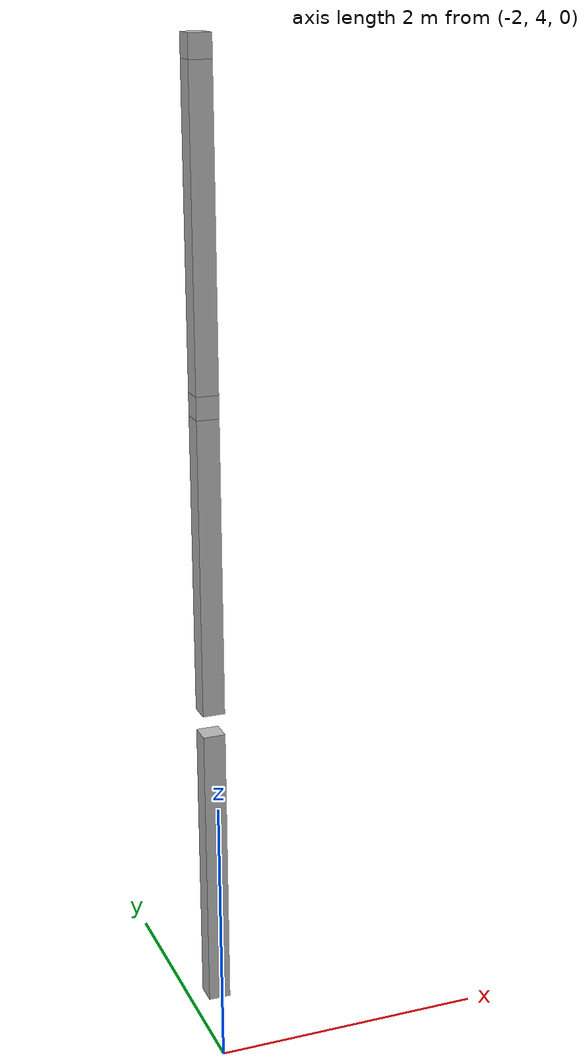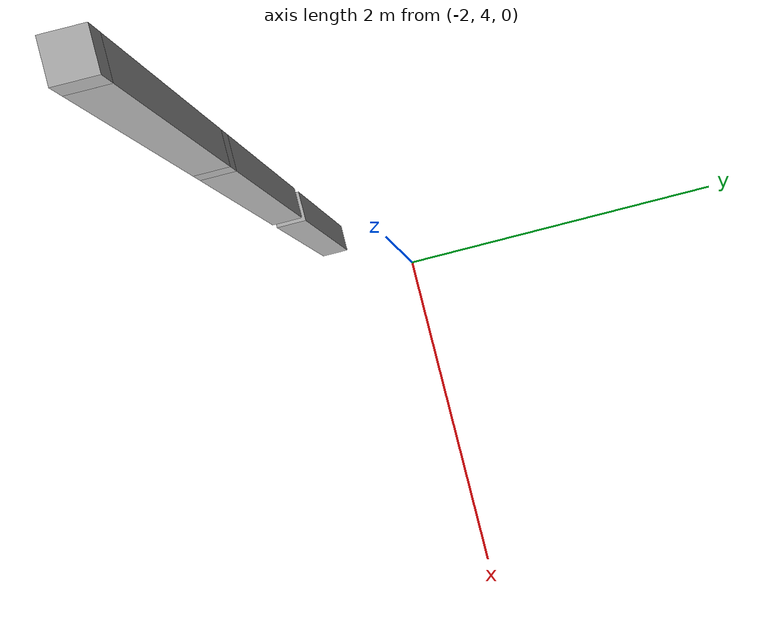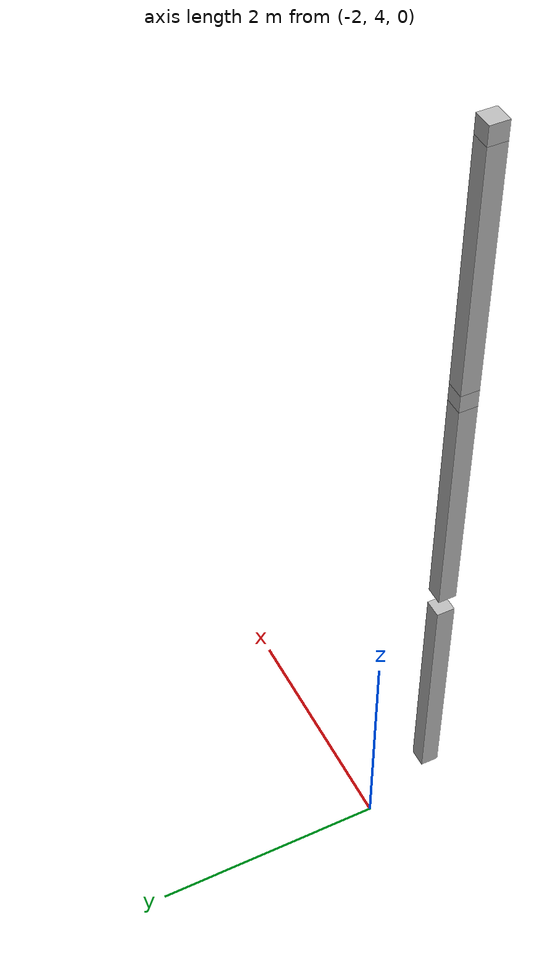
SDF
<sdf version="1.7">
 <world name="default">
  <model name="orthogonal_747_2.000.15_TS">
   <static>1</static>
   <link name="z_link_2_4_2">
    <inertial>
     <mass>1</mass>
     <inertia>
      <ixx>0.166667</ixx>
      <ixy>0</ixy>
      <ixz>0</ixz>
      <iyy>0.166667</iyy>
      <iyz>0</iyz>
      <izz>0.166667</izz>
     </inertia>
    </inertial>
    <pose>4.3 8.6 4.3 0 -0 0</pose>
    <visual name="visual_0">
     <laser_retro>2451</laser_retro>
     <geometry><box><size>0.15 1e-06 2</size></box></geometry>
     <material>
      <script><name>Gazebo/Grey</name><uri>file://media/materials/scripts/gazebo.material</uri></script>
      <shader type="pixel"><normal_map>__default__</normal_map></shader>
      <ambient>0.678 0.498 0.659 1</ambient>
      <diffuse>0.7 0.7 0.7 1</diffuse>
      <specular>0.01 0.01 0.01 1</specular>
      <emissive>0 0 0 1</emissive>
     </material>
     <pose>0 -0.075 0 0 -0 0</pose>
     <transparency>1</transparency>
    </visual>
    <visual name="visual_1">
     <laser_retro>2452</laser_retro>
     <geometry><box><size>0.15 1e-06 2</size></box></geometry>
     <material>
      <script><name>Gazebo/Grey</name><uri>file://media/materials/scripts/gazebo.material</uri></script>
      <shader type="pixel"><normal_map>__default__</normal_map></shader>
      <ambient>0.447 0.624 0.812 1</ambient>
      <diffuse>0.7 0.7 0.7 1</diffuse>
      <specular>0.01 0.01 0.01 1</specular>
      <emissive>0 0 0 1</emissive>
     </material>
     <pose>0 0.075 0 0 -0 0</pose>
     <transparency>1</transparency>
    </visual>
    <visual name="visual_2">
     <laser_retro>2453</laser_retro>
     <geometry><box><size>0.15 0.15 1e-06</size></box></geometry>
     <material>
      <script><name>Gazebo/Grey</name><uri>file://media/materials/scripts/gazebo.material</uri></script>
      <shader type="pixel"><normal_map>__default__</normal_map></shader>
      <ambient>0.988 0.686 0.243 1</ambient>
      <diffuse>0.7 0.7 0.7 1</diffuse>
      <specular>0.01 0.01 0.01 1</specular>
      <emissive>0 0 0 1</emissive>
     </material>
     <pose>0 0 -1 0 -0 0</pose>
     <transparency>1</transparency>
    </visual>
    <visual name="visual_3">
     <laser_retro>2454</laser_retro>
     <geometry><box><size>1e-06 0.15 2</size></box></geometry>
     <material>
      <script><name>Gazebo/Grey</name><uri>file://media/materials/scripts/gazebo.material</uri></script>
      <shader type="pixel"><normal_map>__default__</normal_map></shader>
      <ambient>0.988 0.914 0.31 1</ambient>
      <diffuse>0.7 0.7 0.7 1</diffuse>
      <specular>0.01 0.01 0.01 1</specular>
      <emissive>0 0 0 1</emissive>
     </material>
     <pose>0.075 0 0 0 -0 0</pose>
     <transparency>1</transparency>
    </visual>
    <visual name="visual_4">
     <laser_retro>2455</laser_retro>
     <geometry><box><size>0.15 0.15 1e-06</size></box></geometry>
     <material>
      <script><name>Gazebo/Grey</name><uri>file://media/materials/scripts/gazebo.material</uri></script>
      <shader type="pixel"><normal_map>__default__</normal_map></shader>
      <ambient>0.937 0.161 0.161 1</ambient>
      <diffuse>0.7 0.7 0.7 1</diffuse>
      <specular>0.01 0.01 0.01 1</specular>
      <emissive>0 0 0 1</emissive>
     </material>
     <pose>0 0 1 0 -0 0</pose>
     <transparency>1</transparency>
    </visual>
    <visual name="visual_5">
     <laser_retro>2456</laser_retro>
     <geometry><box><size>1e-06 0.15 2</size></box></geometry>
     <material>
      <script><name>Gazebo/Grey</name><uri>file://media/materials/scripts/gazebo.material</uri></script>
      <shader type="pixel"><normal_map>__default__</normal_map></shader>
      <ambient>0.541 0.886 0.204 1</ambient>
      <diffuse>0.7 0.7 0.7 1</diffuse>
      <specular>0.01 0.01 0.01 1</specular>
      <emissive>0 0 0 1</emissive>
     </material>
     <pose>-0.075 0 0 0 -0 0</pose>
     <transparency>1</transparency>
    </visual>
    <visual name="visual_texture">
     <geometry><box><size>0.149985 0.149985 1.9998</size></box></geometry>
     <material>
      <script>
       <uri>model://BASE_MODELS/simple_block_v2_textured/materials/scripts</uri>
       <uri>model://BASE_MODELS/simple_block_v2_textured/materials/textures</uri>
       <name>metal</name>
      </script>
     </material>
     <laser_retro>2457</laser_retro>
    </visual>
    <collision name="collision">
     <geometry><box><size>0.15 0.15 2</size></box></geometry>
     <surface>
      <friction>
       <ode><mu>1</mu><mu2>1</mu2><fdir1>0 0 0</fdir1><slip1>0</slip1><slip2>0</slip2></ode>
       <torsional>
        <coefficient>1</coefficient>
        <patch_radius>0</patch_radius>
        <surface_radius>0</surface_radius>
        <use_patch_radius>1</use_patch_radius>
        <ode><slip>0</slip></ode>
       </torsional>
      </friction>
      <bounce><restitution_coefficient>0</restitution_coefficient><threshold>1e+06</threshold></bounce>
      <contact>
       <collide_without_contact>0</collide_without_contact>
       <collide_without_contact_bitmask>1</collide_without_contact_bitmask>
       <collide_bitmask>1</collide_bitmask>
       <ode>
        <soft_cfm>0</soft_cfm>
        <soft_erp>0.2</soft_erp>
        <kp>1e+13</kp>
        <kd>1</kd>
        <max_vel>0.01</max_vel>
        <min_depth>0</min_depth>
       </ode>
       <bullet>
        <split_impulse>1</split_impulse>
        <split_impulse_penetration_threshold>-0.01</split_impulse_penetration_threshold>
        <soft_cfm>0</soft_cfm>
        <soft_erp>0.2</soft_erp>
        <kp>1e+13</kp>
        <kd>1</kd>
       </bullet>
      </contact>
     </surface>
    </collision>
   </link>
   <link name="u_link_3_4_2">
    <inertial>
     <mass>1</mass>
     <inertia>
      <ixx>0.166667</ixx>
      <ixy>0</ixy>
      <ixz>0</ixz>
      <iyy>0.166667</iyy>
      <iyz>0</iyz>
      <izz>0.166667</izz>
     </inertia>
    </inertial>
    <pose>4.3 8.6 7.525 0 -0 0</pose>
    <visual name="visual_0">
     <laser_retro>3347</laser_retro>
     <geometry><box><size>0.15 1e-06 0.15</size></box></geometry>
     <material>
      <script><name>Gazebo/Grey</name><uri>file://media/materials/scripts/gazebo.material</uri></script>
      <shader type="pixel"><normal_map>__default__</normal_map></shader>
      <ambient>0.678 0.498 0.659 1</ambient>
      <diffuse>0.7 0.7 0.7 1</diffuse>
      <specular>0.01 0.01 0.01 1</specular>
      <emissive>0 0 0 1</emissive>
     </material>
     <pose>0 -0.075 0 0 -0 0</pose>
     <transparency>1</transparency>
    </visual>
    <visual name="visual_1">
     <laser_retro>3348</laser_retro>
     <geometry><box><size>0.15 1e-06 0.15</size></box></geometry>
     <material>
      <script><name>Gazebo/Grey</name><uri>file://media/materials/scripts/gazebo.material</uri></script>
      <shader type="pixel"><normal_map>__default__</normal_map></shader>
      <ambient>0.447 0.624 0.812 1</ambient>
      <diffuse>0.7 0.7 0.7 1</diffuse>
      <specular>0.01 0.01 0.01 1</specular>
      <emissive>0 0 0 1</emissive>
     </material>
     <pose>0 0.075 0 0 -0 0</pose>
     <transparency>1</transparency>
    </visual>
    <visual name="visual_2">
     <laser_retro>3349</laser_retro>
     <geometry><box><size>0.15 0.15 1e-06</size></box></geometry>
     <material>
      <script><name>Gazebo/Grey</name><uri>file://media/materials/scripts/gazebo.material</uri></script>
      <shader type="pixel"><normal_map>__default__</normal_map></shader>
      <ambient>0.988 0.686 0.243 1</ambient>
      <diffuse>0.7 0.7 0.7 1</diffuse>
      <specular>0.01 0.01 0.01 1</specular>
      <emissive>0 0 0 1</emissive>
     </material>
     <pose>0 0 -0.075 0 -0 0</pose>
     <transparency>1</transparency>
    </visual>
    <visual name="visual_3">
     <laser_retro>3350</laser_retro>
     <geometry><box><size>1e-06 0.15 0.15</size></box></geometry>
     <material>
      <script><name>Gazebo/Grey</name><uri>file://media/materials/scripts/gazebo.material</uri></script>
      <shader type="pixel"><normal_map>__default__</normal_map></shader>
      <ambient>0.988 0.914 0.31 1</ambient>
      <diffuse>0.7 0.7 0.7 1</diffuse>
      <specular>0.01 0.01 0.01 1</specular>
      <emissive>0 0 0 1</emissive>
     </material>
     <pose>0.075 0 0 0 -0 0</pose>
     <transparency>1</transparency>
    </visual>
    <visual name="visual_4">
     <laser_retro>3351</laser_retro>
     <geometry><box><size>0.15 0.15 1e-06</size></box></geometry>
     <material>
      <script><name>Gazebo/Grey</name><uri>file://media/materials/scripts/gazebo.material</uri></script>
      <shader type="pixel"><normal_map>__default__</normal_map></shader>
      <ambient>0.937 0.161 0.161 1</ambient>
      <diffuse>0.7 0.7 0.7 1</diffuse>
      <specular>0.01 0.01 0.01 1</specular>
      <emissive>0 0 0 1</emissive>
     </material>
     <pose>0 0 0.075 0 -0 0</pose>
     <transparency>1</transparency>
    </visual>
    <visual name="visual_5">
     <laser_retro>3352</laser_retro>
     <geometry><box><size>1e-06 0.15 0.15</size></box></geometry>
     <material>
      <script><name>Gazebo/Grey</name><uri>file://media/materials/scripts/gazebo.material</uri></script>
      <shader type="pixel"><normal_map>__default__</normal_map></shader>
      <ambient>0.541 0.886 0.204 1</ambient>
      <diffuse>0.7 0.7 0.7 1</diffuse>
      <specular>0.01 0.01 0.01 1</specular>
      <emissive>0 0 0 1</emissive>
     </material>
     <pose>-0.075 0 0 0 -0 0</pose>
     <transparency>1</transparency>
    </visual>
    <visual name="visual_texture">
     <geometry><box><size>0.149985 0.149985 0.149985</size></box></geometry>
     <material>
      <script>
       <uri>model://BASE_MODELS/simple_block_v2_textured/materials/scripts</uri>
       <uri>model://BASE_MODELS/simple_block_v2_textured/materials/textures</uri>
       <name>metal</name>
      </script>
     </material>
     <laser_retro>3353</laser_retro>
    </visual>
    <collision name="collision">
     <geometry><box><size>0.15 0.15 0.15</size></box></geometry>
     <surface>
      <friction>
       <ode><mu>1</mu><mu2>1</mu2><fdir1>0 0 0</fdir1><slip1>0</slip1><slip2>0</slip2></ode>
       <torsional>
        <coefficient>1</coefficient>
        <patch_radius>0</patch_radius>
        <surface_radius>0</surface_radius>
        <use_patch_radius>1</use_patch_radius>
        <ode><slip>0</slip></ode>
       </torsional>
      </friction>
      <bounce><restitution_coefficient>0</restitution_coefficient><threshold>1e+06</threshold></bounce>
      <contact>
       <collide_without_contact>0</collide_without_contact>
       <collide_without_contact_bitmask>1</collide_without_contact_bitmask>
       <collide_bitmask>1</collide_bitmask>
       <ode>
        <soft_cfm>0</soft_cfm>
        <soft_erp>0.2</soft_erp>
        <kp>1e+13</kp>
        <kd>1</kd>
        <max_vel>0.01</max_vel>
        <min_depth>0</min_depth>
       </ode>
       <bullet>
        <split_impulse>1</split_impulse>
        <split_impulse_penetration_threshold>-0.01</split_impulse_penetration_threshold>
        <soft_cfm>0</soft_cfm>
        <soft_erp>0.2</soft_erp>
        <kp>1e+13</kp>
        <kd>1</kd>
       </bullet>
      </contact>
     </surface>
    </collision>
   </link>
   <link name="z_link_3_4_2">
    <inertial>
     <mass>1</mass>
     <inertia>
      <ixx>0.166667</ixx>
      <ixy>0</ixy>
      <ixz>0</ixz>
      <iyy>0.166667</iyy>
      <iyz>0</iyz>
      <izz>0.166667</izz>
     </inertia>
    </inertial>
    <pose>4.3 8.6 6.45 0 -0 0</pose>
    <visual name="visual_0">
     <laser_retro>3354</laser_retro>
     <geometry><box><size>0.15 1e-06 2</size></box></geometry>
     <material>
      <script><name>Gazebo/Grey</name><uri>file://media/materials/scripts/gazebo.material</uri></script>
      <shader type="pixel"><normal_map>__default__</normal_map></shader>
      <ambient>0.678 0.498 0.659 1</ambient>
      <diffuse>0.7 0.7 0.7 1</diffuse>
      <specular>0.01 0.01 0.01 1</specular>
      <emissive>0 0 0 1</emissive>
     </material>
     <pose>0 -0.075 0 0 -0 0</pose>
     <transparency>1</transparency>
    </visual>
    <visual name="visual_1">
     <laser_retro>3355</laser_retro>
     <geometry><box><size>0.15 1e-06 2</size></box></geometry>
     <material>
      <script><name>Gazebo/Grey</name><uri>file://media/materials/scripts/gazebo.material</uri></script>
      <shader type="pixel"><normal_map>__default__</normal_map></shader>
      <ambient>0.447 0.624 0.812 1</ambient>
      <diffuse>0.7 0.7 0.7 1</diffuse>
      <specular>0.01 0.01 0.01 1</specular>
      <emissive>0 0 0 1</emissive>
     </material>
     <pose>0 0.075 0 0 -0 0</pose>
     <transparency>1</transparency>
    </visual>
    <visual name="visual_2">
     <laser_retro>3356</laser_retro>
     <geometry><box><size>0.15 0.15 1e-06</size></box></geometry>
     <material>
      <script><name>Gazebo/Grey</name><uri>file://media/materials/scripts/gazebo.material</uri></script>
      <shader type="pixel"><normal_map>__default__</normal_map></shader>
      <ambient>0.988 0.686 0.243 1</ambient>
      <diffuse>0.7 0.7 0.7 1</diffuse>
      <specular>0.01 0.01 0.01 1</specular>
      <emissive>0 0 0 1</emissive>
     </material>
     <pose>0 0 -1 0 -0 0</pose>
     <transparency>1</transparency>
    </visual>
    <visual name="visual_3">
     <laser_retro>3357</laser_retro>
     <geometry><box><size>1e-06 0.15 2</size></box></geometry>
     <material>
      <script><name>Gazebo/Grey</name><uri>file://media/materials/scripts/gazebo.material</uri></script>
      <shader type="pixel"><normal_map>__default__</normal_map></shader>
      <ambient>0.988 0.914 0.31 1</ambient>
      <diffuse>0.7 0.7 0.7 1</diffuse>
      <specular>0.01 0.01 0.01 1</specular>
      <emissive>0 0 0 1</emissive>
     </material>
     <pose>0.075 0 0 0 -0 0</pose>
     <transparency>1</transparency>
    </visual>
    <visual name="visual_4">
     <laser_retro>3358</laser_retro>
     <geometry><box><size>0.15 0.15 1e-06</size></box></geometry>
     <material>
      <script><name>Gazebo/Grey</name><uri>file://media/materials/scripts/gazebo.material</uri></script>
      <shader type="pixel"><normal_map>__default__</normal_map></shader>
      <ambient>0.937 0.161 0.161 1</ambient>
      <diffuse>0.7 0.7 0.7 1</diffuse>
      <specular>0.01 0.01 0.01 1</specular>
      <emissive>0 0 0 1</emissive>
     </material>
     <pose>0 0 1 0 -0 0</pose>
     <transparency>1</transparency>
    </visual>
    <visual name="visual_5">
     <laser_retro>3359</laser_retro>
     <geometry><box><size>1e-06 0.15 2</size></box></geometry>
     <material>
      <script><name>Gazebo/Grey</name><uri>file://media/materials/scripts/gazebo.material</uri></script>
      <shader type="pixel"><normal_map>__default__</normal_map></shader>
      <ambient>0.541 0.886 0.204 1</ambient>
      <diffuse>0.7 0.7 0.7 1</diffuse>
      <specular>0.01 0.01 0.01 1</specular>
      <emissive>0 0 0 1</emissive>
     </material>
     <pose>-0.075 0 0 0 -0 0</pose>
     <transparency>1</transparency>
    </visual>
    <visual name="visual_texture">
     <geometry><box><size>0.149985 0.149985 1.9998</size></box></geometry>
     <material>
      <script>
       <uri>model://BASE_MODELS/simple_block_v2_textured/materials/scripts</uri>
       <uri>model://BASE_MODELS/simple_block_v2_textured/materials/textures</uri>
       <name>metal</name>
      </script>
     </material>
     <laser_retro>3360</laser_retro>
    </visual>
    <collision name="collision">
     <geometry><box><size>0.15 0.15 2</size></box></geometry>
     <surface>
      <friction>
       <ode><mu>1</mu><mu2>1</mu2><fdir1>0 0 0</fdir1><slip1>0</slip1><slip2>0</slip2></ode>
       <torsional>
        <coefficient>1</coefficient>
        <patch_radius>0</patch_radius>
        <surface_radius>0</surface_radius>
        <use_patch_radius>1</use_patch_radius>
        <ode><slip>0</slip></ode>
       </torsional>
      </friction>
      <bounce><restitution_coefficient>0</restitution_coefficient><threshold>1e+06</threshold></bounce>
      <contact>
       <collide_without_contact>0</collide_without_contact>
       <collide_without_contact_bitmask>1</collide_without_contact_bitmask>
       <collide_bitmask>1</collide_bitmask>
       <ode>
        <soft_cfm>0</soft_cfm>
        <soft_erp>0.2</soft_erp>
        <kp>1e+13</kp>
        <kd>1</kd>
        <max_vel>0.01</max_vel>
        <min_depth>0</min_depth>
       </ode>
       <bullet>
        <split_impulse>1</split_impulse>
        <split_impulse_penetration_threshold>-0.01</split_impulse_penetration_threshold>
        <soft_cfm>0</soft_cfm>
        <soft_erp>0.2</soft_erp>
        <kp>1e+13</kp>
        <kd>1</kd>
       </bullet>
      </contact>
     </surface>
    </collision>
   </link>
   <link name="u_link_4_4_2">
    <inertial>
     <mass>1</mass>
     <inertia>
      <ixx>0.166667</ixx>
      <ixy>0</ixy>
      <ixz>0</ixz>
      <iyy>0.166667</iyy>
      <iyz>0</iyz>
      <izz>0.166667</izz>
     </inertia>
    </inertial>
    <pose>4.3 8.6 9.675 0 -0 0</pose>
    <visual name="visual_0">
     <laser_retro>4250</laser_retro>
     <geometry><box><size>0.15 1e-06 0.15</size></box></geometry>
     <material>
      <script><name>Gazebo/Grey</name><uri>file://media/materials/scripts/gazebo.material</uri></script>
      <shader type="pixel"><normal_map>__default__</normal_map></shader>
      <ambient>0.678 0.498 0.659 1</ambient>
      <diffuse>0.7 0.7 0.7 1</diffuse>
      <specular>0.01 0.01 0.01 1</specular>
      <emissive>0 0 0 1</emissive>
     </material>
     <pose>0 -0.075 0 0 -0 0</pose>
     <transparency>1</transparency>
    </visual>
    <visual name="visual_1">
     <laser_retro>4251</laser_retro>
     <geometry><box><size>0.15 1e-06 0.15</size></box></geometry>
     <material>
      <script><name>Gazebo/Grey</name><uri>file://media/materials/scripts/gazebo.material</uri></script>
      <shader type="pixel"><normal_map>__default__</normal_map></shader>
      <ambient>0.447 0.624 0.812 1</ambient>
      <diffuse>0.7 0.7 0.7 1</diffuse>
      <specular>0.01 0.01 0.01 1</specular>
      <emissive>0 0 0 1</emissive>
     </material>
     <pose>0 0.075 0 0 -0 0</pose>
     <transparency>1</transparency>
    </visual>
    <visual name="visual_2">
     <laser_retro>4252</laser_retro>
     <geometry><box><size>0.15 0.15 1e-06</size></box></geometry>
     <material>
      <script><name>Gazebo/Grey</name><uri>file://media/materials/scripts/gazebo.material</uri></script>
      <shader type="pixel"><normal_map>__default__</normal_map></shader>
      <ambient>0.988 0.686 0.243 1</ambient>
      <diffuse>0.7 0.7 0.7 1</diffuse>
      <specular>0.01 0.01 0.01 1</specular>
      <emissive>0 0 0 1</emissive>
     </material>
     <pose>0 0 -0.075 0 -0 0</pose>
     <transparency>1</transparency>
    </visual>
    <visual name="visual_3">
     <laser_retro>4253</laser_retro>
     <geometry><box><size>1e-06 0.15 0.15</size></box></geometry>
     <material>
      <script><name>Gazebo/Grey</name><uri>file://media/materials/scripts/gazebo.material</uri></script>
      <shader type="pixel"><normal_map>__default__</normal_map></shader>
      <ambient>0.988 0.914 0.31 1</ambient>
      <diffuse>0.7 0.7 0.7 1</diffuse>
      <specular>0.01 0.01 0.01 1</specular>
      <emissive>0 0 0 1</emissive>
     </material>
     <pose>0.075 0 0 0 -0 0</pose>
     <transparency>1</transparency>
    </visual>
    <visual name="visual_4">
     <laser_retro>4254</laser_retro>
     <geometry><box><size>0.15 0.15 1e-06</size></box></geometry>
     <material>
      <script><name>Gazebo/Grey</name><uri>file://media/materials/scripts/gazebo.material</uri></script>
      <shader type="pixel"><normal_map>__default__</normal_map></shader>
      <ambient>0.937 0.161 0.161 1</ambient>
      <diffuse>0.7 0.7 0.7 1</diffuse>
      <specular>0.01 0.01 0.01 1</specular>
      <emissive>0 0 0 1</emissive>
     </material>
     <pose>0 0 0.075 0 -0 0</pose>
     <transparency>1</transparency>
    </visual>
    <visual name="visual_5">
     <laser_retro>4255</laser_retro>
     <geometry><box><size>1e-06 0.15 0.15</size></box></geometry>
     <material>
      <script><name>Gazebo/Grey</name><uri>file://media/materials/scripts/gazebo.material</uri></script>
      <shader type="pixel"><normal_map>__default__</normal_map></shader>
      <ambient>0.541 0.886 0.204 1</ambient>
      <diffuse>0.7 0.7 0.7 1</diffuse>
      <specular>0.01 0.01 0.01 1</specular>
      <emissive>0 0 0 1</emissive>
     </material>
     <pose>-0.075 0 0 0 -0 0</pose>
     <transparency>1</transparency>
    </visual>
    <visual name="visual_texture">
     <geometry><box><size>0.149985 0.149985 0.149985</size></box></geometry>
     <material>
      <script>
       <uri>model://BASE_MODELS/simple_block_v2_textured/materials/scripts</uri>
       <uri>model://BASE_MODELS/simple_block_v2_textured/materials/textures</uri>
       <name>metal</name>
      </script>
     </material>
     <laser_retro>4256</laser_retro>
    </visual>
    <collision name="collision">
     <geometry><box><size>0.15 0.15 0.15</size></box></geometry>
     <surface>
      <friction>
       <ode><mu>1</mu><mu2>1</mu2><fdir1>0 0 0</fdir1><slip1>0</slip1><slip2>0</slip2></ode>
       <torsional>
        <coefficient>1</coefficient>
        <patch_radius>0</patch_radius>
        <surface_radius>0</surface_radius>
        <use_patch_radius>1</use_patch_radius>
        <ode><slip>0</slip></ode>
       </torsional>
      </friction>
      <bounce><restitution_coefficient>0</restitution_coefficient><threshold>1e+06</threshold></bounce>
      <contact>
       <collide_without_contact>0</collide_without_contact>
       <collide_without_contact_bitmask>1</collide_without_contact_bitmask>
       <collide_bitmask>1</collide_bitmask>
       <ode>
        <soft_cfm>0</soft_cfm>
        <soft_erp>0.2</soft_erp>
        <kp>1e+13</kp>
        <kd>1</kd>
        <max_vel>0.01</max_vel>
        <min_depth>0</min_depth>
       </ode>
       <bullet>
        <split_impulse>1</split_impulse>
        <split_impulse_penetration_threshold>-0.01</split_impulse_penetration_threshold>
        <soft_cfm>0</soft_cfm>
        <soft_erp>0.2</soft_erp>
        <kp>1e+13</kp>
        <kd>1</kd>
       </bullet>
      </contact>
     </surface>
    </collision>
   </link>
   <link name="z_link_4_4_2">
    <inertial>
     <mass>1</mass>
     <inertia>
      <ixx>0.166667</ixx>
      <ixy>0</ixy>
      <ixz>0</ixz>
      <iyy>0.166667</iyy>
      <iyz>0</iyz>
      <izz>0.166667</izz>
     </inertia>
    </inertial>
    <pose>4.3 8.6 8.6 0 -0 0</pose>
    <visual name="visual_0">
     <laser_retro>4257</laser_retro>
     <geometry><box><size>0.15 1e-06 2</size></box></geometry>
     <material>
      <script><name>Gazebo/Grey</name><uri>file://media/materials/scripts/gazebo.material</uri></script>
      <shader type="pixel"><normal_map>__default__</normal_map></shader>
      <ambient>0.678 0.498 0.659 1</ambient>
      <diffuse>0.7 0.7 0.7 1</diffuse>
      <specular>0.01 0.01 0.01 1</specular>
      <emissive>0 0 0 1</emissive>
     </material>
     <pose>0 -0.075 0 0 -0 0</pose>
     <transparency>1</transparency>
    </visual>
    <visual name="visual_1">
     <laser_retro>4258</laser_retro>
     <geometry><box><size>0.15 1e-06 2</size></box></geometry>
     <material>
      <script><name>Gazebo/Grey</name><uri>file://media/materials/scripts/gazebo.material</uri></script>
      <shader type="pixel"><normal_map>__default__</normal_map></shader>
      <ambient>0.447 0.624 0.812 1</ambient>
      <diffuse>0.7 0.7 0.7 1</diffuse>
      <specular>0.01 0.01 0.01 1</specular>
      <emissive>0 0 0 1</emissive>
     </material>
     <pose>0 0.075 0 0 -0 0</pose>
     <transparency>1</transparency>
    </visual>
    <visual name="visual_2">
     <laser_retro>4259</laser_retro>
     <geometry><box><size>0.15 0.15 1e-06</size></box></geometry>
     <material>
      <script><name>Gazebo/Grey</name><uri>file://media/materials/scripts/gazebo.material</uri></script>
      <shader type="pixel"><normal_map>__default__</normal_map></shader>
      <ambient>0.988 0.686 0.243 1</ambient>
      <diffuse>0.7 0.7 0.7 1</diffuse>
      <specular>0.01 0.01 0.01 1</specular>
      <emissive>0 0 0 1</emissive>
     </material>
     <pose>0 0 -1 0 -0 0</pose>
     <transparency>1</transparency>
    </visual>
    <visual name="visual_3">
     <laser_retro>4260</laser_retro>
     <geometry><box><size>1e-06 0.15 2</size></box></geometry>
     <material>
      <script><name>Gazebo/Grey</name><uri>file://media/materials/scripts/gazebo.material</uri></script>
      <shader type="pixel"><normal_map>__default__</normal_map></shader>
      <ambient>0.988 0.914 0.31 1</ambient>
      <diffuse>0.7 0.7 0.7 1</diffuse>
      <specular>0.01 0.01 0.01 1</specular>
      <emissive>0 0 0 1</emissive>
     </material>
     <pose>0.075 0 0 0 -0 0</pose>
     <transparency>1</transparency>
    </visual>
    <visual name="visual_4">
     <laser_retro>4261</laser_retro>
     <geometry><box><size>0.15 0.15 1e-06</size></box></geometry>
     <material>
      <script><name>Gazebo/Grey</name><uri>file://media/materials/scripts/gazebo.material</uri></script>
      <shader type="pixel"><normal_map>__default__</normal_map></shader>
      <ambient>0.937 0.161 0.161 1</ambient>
      <diffuse>0.7 0.7 0.7 1</diffuse>
      <specular>0.01 0.01 0.01 1</specular>
      <emissive>0 0 0 1</emissive>
     </material>
     <pose>0 0 1 0 -0 0</pose>
     <transparency>1</transparency>
    </visual>
    <visual name="visual_5">
     <laser_retro>4262</laser_retro>
     <geometry><box><size>1e-06 0.15 2</size></box></geometry>
     <material>
      <script><name>Gazebo/Grey</name><uri>file://media/materials/scripts/gazebo.material</uri></script>
      <shader type="pixel"><normal_map>__default__</normal_map></shader>
      <ambient>0.541 0.886 0.204 1</ambient>
      <diffuse>0.7 0.7 0.7 1</diffuse>
      <specular>0.01 0.01 0.01 1</specular>
      <emissive>0 0 0 1</emissive>
     </material>
     <pose>-0.075 0 0 0 -0 0</pose>
     <transparency>1</transparency>
    </visual>
    <visual name="visual_texture">
     <geometry><box><size>0.149985 0.149985 1.9998</size></box></geometry>
     <material>
      <script>
       <uri>model://BASE_MODELS/simple_block_v2_textured/materials/scripts</uri>
       <uri>model://BASE_MODELS/simple_block_v2_textured/materials/textures</uri>
       <name>metal</name>
      </script>
     </material>
     <laser_retro>4263</laser_retro>
    </visual>
    <collision name="collision">
     <geometry><box><size>0.15 0.15 2</size></box></geometry>
     <surface>
      <friction>
       <ode><mu>1</mu><mu2>1</mu2><fdir1>0 0 0</fdir1><slip1>0</slip1><slip2>0</slip2></ode>
       <torsional>
        <coefficient>1</coefficient>
        <patch_radius>0</patch_radius>
        <surface_radius>0</surface_radius>
        <use_patch_radius>1</use_patch_radius>
        <ode><slip>0</slip></ode>
       </torsional>
      </friction>
      <bounce><restitution_coefficient>0</restitution_coefficient><threshold>1e+06</threshold></bounce>
      <contact>
       <collide_without_contact>0</collide_without_contact>
       <collide_without_contact_bitmask>1</collide_without_contact_bitmask>
       <collide_bitmask>1</collide_bitmask>
       <ode>
        <soft_cfm>0</soft_cfm>
        <soft_erp>0.2</soft_erp>
        <kp>1e+13</kp>
        <kd>1</kd>
        <max_vel>0.01</max_vel>
        <min_depth>0</min_depth>
       </ode>
       <bullet>
        <split_impulse>1</split_impulse>
        <split_impulse_penetration_threshold>-0.01</split_impulse_penetration_threshold>
        <soft_cfm>0</soft_cfm>
        <soft_erp>0.2</soft_erp>
        <kp>1e+13</kp>
        <kd>1</kd>
       </bullet>
      </contact>
     </surface>
    </collision>
   </link>
   <pose>-6.47624 -5 -2.5 0 -0 0</pose>
  </model>
 </world>
</sdf>
